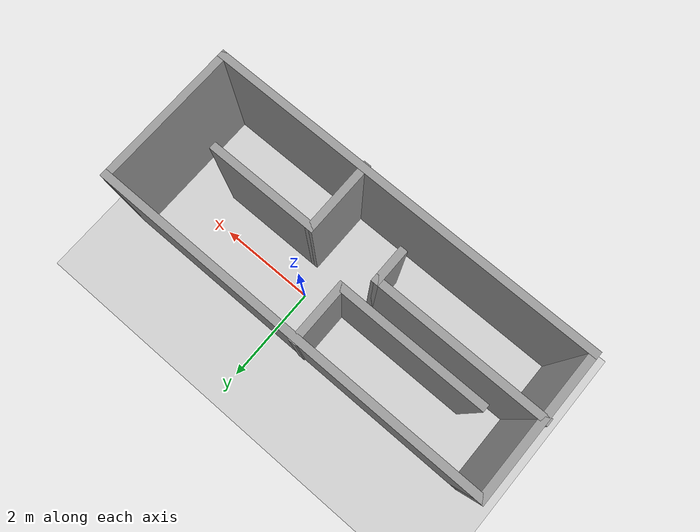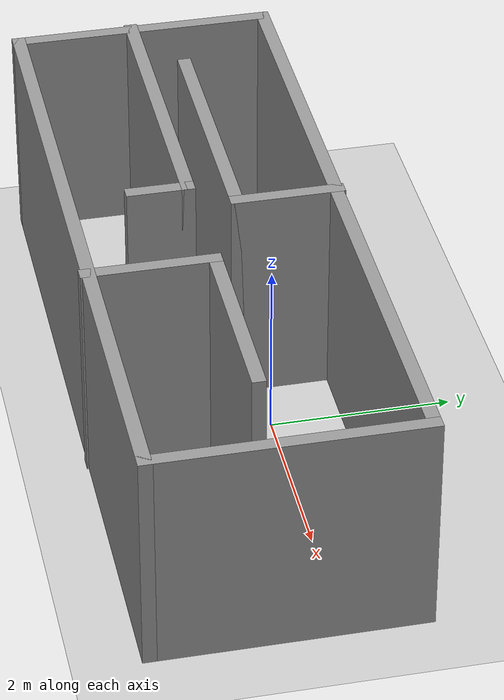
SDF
<sdf version="1.7">
 <world name="default">
  <light name="sun" type="directional">
   <pose>0 0 10 0 -0 0</pose>
   <diffuse>0.8 0.8 0.8 1</diffuse>
   <specular>0.2 0.2 0.2 1</specular>
   <attenuation>
    <range>1000</range>
    <constant>0.9</constant>
    <linear>0.01</linear>
    <quadratic>0.001</quadratic>
   </attenuation>
   <direction>-0.5 0.1 -0.9</direction>
   <spot><inner_angle>0</inner_angle><outer_angle>0</outer_angle><falloff>0</falloff></spot>
  </light>
  <model name="ground_plane">
   <static>1</static>
   <link name="link">
    <collision name="collision">
     <geometry><plane><normal>0 0 1</normal><size>100 100</size></plane></geometry>
     <surface><friction><ode><mu>100</mu><mu2>50</mu2></ode></friction></surface>
    </collision>
    <visual name="visual">
     <cast_shadows>0</cast_shadows>
     <geometry><plane><normal>0 0 1</normal><size>100 100</size></plane></geometry>
     <material>
      <script><uri>file://media/materials/scripts/gazebo.material</uri><name>Gazebo/Grey</name></script>
     </material>
    </visual>
   </link>
  </model>
  <gravity>0 0 -9.8</gravity>
  <magnetic_field>6e-06 2.3e-05 -4.2e-05</magnetic_field>
  <atmosphere type="adiabatic"/>
  <physics type="ode">
   <max_step_size>0.001</max_step_size>
   <real_time_factor>1</real_time_factor>
   <real_time_update_rate>1000</real_time_update_rate>
  </physics>
  <scene><ambient>0.4 0.4 0.4 1</ambient><background>0.7 0.7 0.7 1</background><shadows>1</shadows></scene>
  <audio><device>default</device></audio>
  <spherical_coordinates>
   <surface_model>EARTH_WGS84</surface_model>
   <latitude_deg>0</latitude_deg>
   <longitude_deg>0</longitude_deg>
   <elevation>0</elevation>
   <heading_deg>0</heading_deg>
  </spherical_coordinates>
  <model name="room">
   <pose>-0.525138 -0.105087 0 0 -0 0</pose>
   <link name="Wall_10">
    <collision name="Wall_10_Collision">
     <geometry><box><size>3 0.15 2.5</size></box></geometry>
     <pose>0 0 1.25 0 -0 0</pose>
    </collision>
    <visual name="Wall_10_Visual">
     <pose>0 0 1.25 0 -0 0</pose>
     <geometry><box><size>3 0.15 2.5</size></box></geometry>
     <material>
      <script><uri>file://media/materials/scripts/gazebo.material</uri><name>Gazebo/Grey</name></script>
      <ambient>1 1 1 1</ambient>
     </material>
     <meta><layer>0</layer></meta>
    </visual>
    <pose>-3.91 -0.4625 0 0 -0 1.5708</pose>
   </link>
   <link name="Wall_12">
    <collision name="Wall_12_Collision">
     <geometry><box><size>1.25 0.15 2.5</size></box></geometry>
     <pose>0 0 1.25 0 -0 0</pose>
    </collision>
    <visual name="Wall_12_Visual">
     <pose>0 0 1.25 0 -0 0</pose>
     <geometry><box><size>1.25 0.15 2.5</size></box></geometry>
     <material>
      <script><uri>file://media/materials/scripts/gazebo.material</uri><name>Gazebo/Grey</name></script>
      <ambient>1 1 1 1</ambient>
     </material>
     <meta><layer>0</layer></meta>
    </visual>
    <pose>-0.22 0.4325 0 0 -0 -1.5708</pose>
   </link>
   <link name="Wall_15">
    <collision name="Wall_15_Collision">
     <geometry><box><size>3 0.15 2.5</size></box></geometry>
     <pose>0 0 1.25 0 -0 0</pose>
    </collision>
    <visual name="Wall_15_Visual">
     <pose>0 0 1.25 0 -0 0</pose>
     <geometry><box><size>3 0.15 2.5</size></box></geometry>
     <material>
      <script><uri>file://media/materials/scripts/gazebo.material</uri><name>Gazebo/Grey</name></script>
      <ambient>1 1 1 1</ambient>
     </material>
     <meta><layer>0</layer></meta>
    </visual>
    <pose>-1.645 -0.1175 0 0 -0 3.14159</pose>
   </link>
   <link name="Wall_17">
    <collision name="Wall_17_Collision">
     <geometry><box><size>3.5 0.15 2.5</size></box></geometry>
     <pose>0 0 1.25 0 -0 0</pose>
    </collision>
    <visual name="Wall_17_Visual">
     <pose>0 0 1.25 0 -0 0</pose>
     <geometry><box><size>3.5 0.15 2.5</size></box></geometry>
     <material>
      <script><uri>file://media/materials/scripts/gazebo.material</uri><name>Gazebo/Grey</name></script>
      <ambient>1 1 1 1</ambient>
     </material>
     <meta><layer>0</layer></meta>
    </visual>
    <pose>-2.265 -0.5775 0 0 -0 0</pose>
   </link>
   <link name="Wall_18">
    <collision name="Wall_18_Collision">
     <geometry><box><size>0.75 0.15 2.5</size></box></geometry>
     <pose>0 0 1.25 0 -0 0</pose>
    </collision>
    <visual name="Wall_18_Visual">
     <pose>0 0 1.25 0 -0 0</pose>
     <geometry><box><size>0.75 0.15 2.5</size></box></geometry>
     <material>
      <script><uri>file://media/materials/scripts/gazebo.material</uri><name>Gazebo/Grey</name></script>
      <ambient>1 1 1 1</ambient>
     </material>
     <meta><layer>0</layer></meta>
    </visual>
    <pose>-0.59 -0.8775 0 0 -0 -1.5708</pose>
   </link>
   <link name="Wall_20">
    <collision name="Wall_20_Collision">
     <geometry><box><size>1.5 0.15 2.5</size></box></geometry>
     <pose>0 0 1.25 0 -0 0</pose>
    </collision>
    <visual name="Wall_20_Visual">
     <pose>0 0 1.25 0 -0 0</pose>
     <geometry><box><size>1.5 0.15 2.5</size></box></geometry>
     <material>
      <script><uri>file://media/materials/scripts/gazebo.material</uri><name>Gazebo/Grey</name></script>
      <ambient>1 1 1 1</ambient>
     </material>
     <meta><layer>0</layer></meta>
    </visual>
    <pose>0.79 -1.2325 0 0 -0 1.5708</pose>
   </link>
   <link name="Wall_21">
    <collision name="Wall_21_Collision">
     <geometry><box><size>2.25 0.15 2.5</size></box></geometry>
     <pose>0 0 1.25 0 -0 0</pose>
    </collision>
    <visual name="Wall_21_Visual">
     <pose>0 0 1.25 0 -0 0</pose>
     <geometry><box><size>2.25 0.15 2.5</size></box></geometry>
     <material>
      <script><uri>file://media/materials/scripts/gazebo.material</uri><name>Gazebo/Grey</name></script>
      <ambient>1 1 1 1</ambient>
     </material>
     <meta><layer>0</layer></meta>
    </visual>
    <pose>1.84 -0.5575 0 0 -0 0</pose>
   </link>
   <link name="Wall_7">
    <collision name="Wall_7_Collision">
     <geometry><box><size>8 0.15 2.5</size></box></geometry>
     <pose>0 0 1.25 0 -0 0</pose>
    </collision>
    <visual name="Wall_7_Visual">
     <pose>0 0 1.25 0 -0 0</pose>
     <geometry><box><size>8 0.15 2.5</size></box></geometry>
     <material>
      <script><uri>file://media/materials/scripts/gazebo.material</uri><name>Gazebo/Grey</name></script>
      <ambient>1 1 1 1</ambient>
     </material>
     <meta><layer>0</layer></meta>
    </visual>
    <pose>0.015 0.9625 0 0 -0 0</pose>
   </link>
   <link name="Wall_8">
    <collision name="Wall_8_Collision">
     <geometry><box><size>3 0.15 2.5</size></box></geometry>
     <pose>0 0 1.25 0 -0 0</pose>
    </collision>
    <visual name="Wall_8_Visual">
     <pose>0 0 1.25 0 -0 0</pose>
     <geometry><box><size>3 0.15 2.5</size></box></geometry>
     <material>
      <script><uri>file://media/materials/scripts/gazebo.material</uri><name>Gazebo/Grey</name></script>
      <ambient>1 1 1 1</ambient>
     </material>
     <meta><layer>0</layer></meta>
    </visual>
    <pose>3.94 -0.4625 0 0 -0 -1.5708</pose>
   </link>
   <link name="Wall_9">
    <collision name="Wall_9_Collision">
     <geometry><box><size>8 0.15 2.5</size></box></geometry>
     <pose>0 0 1.25 0 -0 0</pose>
    </collision>
    <visual name="Wall_9_Visual">
     <pose>0 0 1.25 0 -0 0</pose>
     <geometry><box><size>8 0.15 2.5</size></box></geometry>
     <material>
      <script><uri>file://media/materials/scripts/gazebo.material</uri><name>Gazebo/Grey</name></script>
      <ambient>1 1 1 1</ambient>
     </material>
     <meta><layer>0</layer></meta>
    </visual>
    <pose>0.015 -1.8875 0 0 -0 3.14159</pose>
   </link>
   <static>1</static>
  </model>
 </world>
</sdf>
